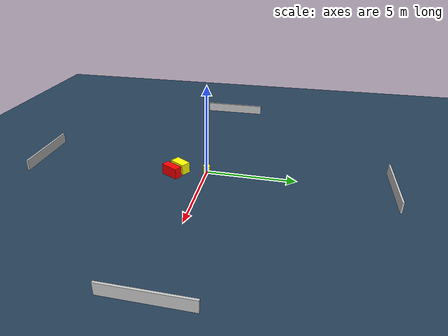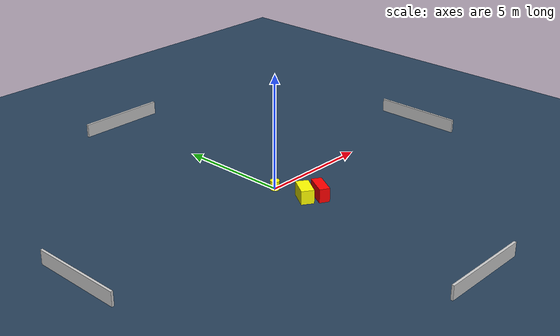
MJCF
<?xml version="1.0" ?>
<mujoco model="generated_environment">
  <option timestep="0.01" integrator="RK4" cone="elliptic"/>
  <default>
    <geom density="1"/>
  </default>
  <asset>
    <texture builtin="gradient" height="3072" name="skybox" rgb1="0.3 0.5 0.7" rgb2="0 0 0" type="skybox" width="512"/>
    <texture builtin="checker" height="300" name="groundplane" rgb1="0.2 0.3 0.4" rgb2="0.1 0.2 0.3" type="2d" width="300"/>
    <material name="groundplane" reflectance="0.2" texrepeat="5 5" texture="groundplane"/>
  </asset>
  <worldbody>
    <light dir="0 0 -1" directional="true" pos="0 0 1.5"/>
    <geom condim="3" friction="0.5 0.005 0.001" material="groundplane" name="floor" pos="0 0 0" size="0 0 0.05" type="plane"/>
    <body name="walls">
      <geom name="wall_1" condim="4" pos="-10.0 0.0 0.3" rgba="0.800000011920929 0.800000011920929 0.800000011920929 1.0" size="0.05 2.0 0.3" type="box"/>
      <geom name="wall_2" condim="4" pos="10.0 0.0 0.3" rgba="0.800000011920929 0.800000011920929 0.800000011920929 1.0" size="0.05 2.0 0.3" type="box"/>
      <geom name="wall_3" condim="4" pos="0.0 -10.0 0.3" rgba="0.800000011920929 0.800000011920929 0.800000011920929 1.0" size="2.0 0.05 0.3" type="box"/>
      <geom name="wall_4" condim="4" pos="0.0 10.0 0.3" rgba="0.800000011920929 0.800000011920929 0.800000011920929 1.0" size="2.0 0.05 0.3" type="box"/>
    </body>
    <body name="robot">
      <joint name="joint_x" type="slide" pos="0 0 0" axis="1 0 0"/>
      <joint name="joint_y" type="slide" pos="0 0 0" axis="0 1 0"/>
      <geom name="robot" type="cylinder" pos="0.0 0.0 0.2" size="0.2 0.2 0.0" mass="5.0" friction="1.0 0.005 0.0001" condim="4" rgba="1.0 1.0 0.0 1.0"/>
    </body>
    <body name="obstacle_1_movable">
      <geom name="obstacle_1_movable" condim="4" pos="0.17245179846348868 -1.4835656673412017 0.3" euler="0 0 146.57938220283194" friction="0.0 0.005 0.001" rgba="1.0 1.0 0.0 1.0" size="0.27636489172899986 0.479878751191606 0.3" type="box" mass="0.1"/>
      <joint type="free"/>
    </body>
    <body name="obstacle_2_static">
      <geom name="obstacle_2_static" condim="4" pos="0.7489481275815486 -1.8208311185356383 0.3" euler="0 0 150.5481029040817" friction="0.0 0.005 0.001" rgba="1.0 0.0 0.0 1.0" size="0.2253413294713369 0.5195959237679513 0.3" type="box"/>
    </body>
  </worldbody>
  <actuator>
    <motor name="actuator_x" joint="joint_x" gear="1" ctrlrange="-1 1"/>
    <motor name="actuator_y" joint="joint_y" gear="1" ctrlrange="-1 1"/>
  </actuator>
</mujoco>
